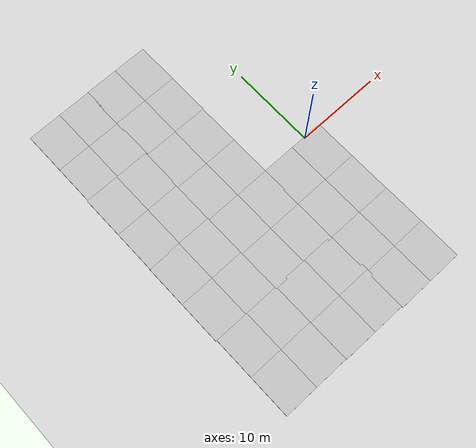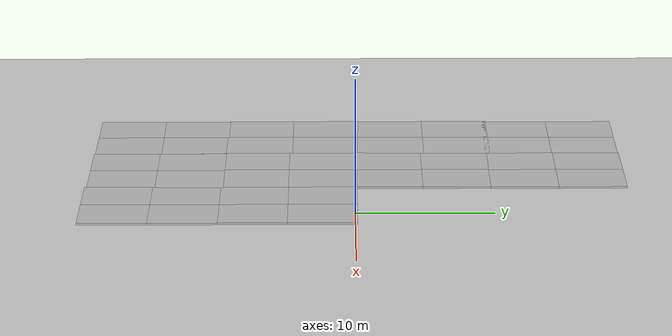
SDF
<sdf version="1.6">
 <world name="default">
  <model name="ground_plane">
   <static>1</static>
   <link name="link">
    <collision name="collision">
     <geometry><plane><normal>0 0 1</normal><size>100 100</size></plane></geometry>
     <surface><friction><ode><mu>100</mu><mu2>50</mu2></ode></friction></surface>
    </collision>
    <visual name="visual">
     <cast_shadows>0</cast_shadows>
     <geometry><plane><normal>0 0 1</normal><size>100 100</size></plane></geometry>
     <material>
      <script><uri>file://media/materials/scripts/gazebo.material</uri><name>Gazebo/Grey</name></script>
     </material>
    </visual>
   </link>
  </model>
  <model name="mud_box_5">
   <static>1</static>
   <link name="link">
    <collision name="collision"><geometry><box><size>8 10 0.2</size></box></geometry></collision>
    <visual name="visual_1">
     <pose>-2 2.5 0 0 -0 0</pose>
     <cast_shadows>0</cast_shadows>
     <geometry><box><size>4 5 0.2</size></box></geometry>
     <material>
      <script>
       <uri>model://mud_box/materials/scripts</uri>
       <uri>model://mud_box/materials/textures</uri>
       <name>vrc/mud</name>
      </script>
     </material>
    </visual>
    <visual name="visual_2">
     <pose>2 2.5 0 0 -0 0</pose>
     <cast_shadows>0</cast_shadows>
     <geometry><box><size>4 5 0.2</size></box></geometry>
     <material>
      <script>
       <uri>model://mud_box/materials/scripts</uri>
       <uri>model://mud_box/materials/textures</uri>
       <name>vrc/mud</name>
      </script>
     </material>
    </visual>
    <visual name="visual_3">
     <pose>2 -2.5 0 0 -0 0</pose>
     <cast_shadows>0</cast_shadows>
     <geometry><box><size>4 5 0.2</size></box></geometry>
     <material>
      <script>
       <uri>model://mud_box/materials/scripts</uri>
       <uri>model://mud_box/materials/textures</uri>
       <name>vrc/mud</name>
      </script>
     </material>
    </visual>
    <visual name="visual_4">
     <pose>-2 -2.5 0 0 -0 0</pose>
     <cast_shadows>0</cast_shadows>
     <geometry><box><size>4 5 0.2</size></box></geometry>
     <material>
      <script>
       <uri>model://mud_box/materials/scripts</uri>
       <uri>model://mud_box/materials/textures</uri>
       <name>vrc/mud</name>
      </script>
     </material>
    </visual>
   </link>
   <pose>-1.79007 -4.85015 0 0 -0 0</pose>
  </model>
  <model name="mud_box_7">
   <static>1</static>
   <link name="link">
    <collision name="collision"><geometry><box><size>8 10 0.2</size></box></geometry></collision>
    <visual name="visual_1">
     <pose>-2 2.5 0 0 -0 0</pose>
     <cast_shadows>0</cast_shadows>
     <geometry><box><size>4 5 0.2</size></box></geometry>
     <material>
      <script>
       <uri>model://mud_box/materials/scripts</uri>
       <uri>model://mud_box/materials/textures</uri>
       <name>vrc/mud</name>
      </script>
     </material>
    </visual>
    <visual name="visual_2">
     <pose>2 2.5 0 0 -0 0</pose>
     <cast_shadows>0</cast_shadows>
     <geometry><box><size>4 5 0.2</size></box></geometry>
     <material>
      <script>
       <uri>model://mud_box/materials/scripts</uri>
       <uri>model://mud_box/materials/textures</uri>
       <name>vrc/mud</name>
      </script>
     </material>
    </visual>
    <visual name="visual_3">
     <pose>2 -2.5 0 0 -0 0</pose>
     <cast_shadows>0</cast_shadows>
     <geometry><box><size>4 5 0.2</size></box></geometry>
     <material>
      <script>
       <uri>model://mud_box/materials/scripts</uri>
       <uri>model://mud_box/materials/textures</uri>
       <name>vrc/mud</name>
      </script>
     </material>
    </visual>
    <visual name="visual_4">
     <pose>-2 -2.5 0 0 -0 0</pose>
     <cast_shadows>0</cast_shadows>
     <geometry><box><size>4 5 0.2</size></box></geometry>
     <material>
      <script>
       <uri>model://mud_box/materials/scripts</uri>
       <uri>model://mud_box/materials/textures</uri>
       <name>vrc/mud</name>
      </script>
     </material>
    </visual>
   </link>
   <pose>-9.71456 4.97281 0 0 -0 0</pose>
  </model>
  <model name="mud_box_8">
   <static>1</static>
   <link name="link">
    <collision name="collision"><geometry><box><size>8 10 0.2</size></box></geometry></collision>
    <visual name="visual_1">
     <pose>-2 2.5 0 0 -0 0</pose>
     <cast_shadows>0</cast_shadows>
     <geometry><box><size>4 5 0.2</size></box></geometry>
     <material>
      <script>
       <uri>model://mud_box/materials/scripts</uri>
       <uri>model://mud_box/materials/textures</uri>
       <name>vrc/mud</name>
      </script>
     </material>
    </visual>
    <visual name="visual_2">
     <pose>2 2.5 0 0 -0 0</pose>
     <cast_shadows>0</cast_shadows>
     <geometry><box><size>4 5 0.2</size></box></geometry>
     <material>
      <script>
       <uri>model://mud_box/materials/scripts</uri>
       <uri>model://mud_box/materials/textures</uri>
       <name>vrc/mud</name>
      </script>
     </material>
    </visual>
    <visual name="visual_3">
     <pose>2 -2.5 0 0 -0 0</pose>
     <cast_shadows>0</cast_shadows>
     <geometry><box><size>4 5 0.2</size></box></geometry>
     <material>
      <script>
       <uri>model://mud_box/materials/scripts</uri>
       <uri>model://mud_box/materials/textures</uri>
       <name>vrc/mud</name>
      </script>
     </material>
    </visual>
    <visual name="visual_4">
     <pose>-2 -2.5 0 0 -0 0</pose>
     <cast_shadows>0</cast_shadows>
     <geometry><box><size>4 5 0.2</size></box></geometry>
     <material>
      <script>
       <uri>model://mud_box/materials/scripts</uri>
       <uri>model://mud_box/materials/textures</uri>
       <name>vrc/mud</name>
      </script>
     </material>
    </visual>
   </link>
   <pose>-9.69383 -4.87197 0 0 -0 0</pose>
  </model>
  <model name="mud_box_9">
   <static>1</static>
   <link name="link">
    <collision name="collision"><geometry><box><size>8 10 0.2</size></box></geometry></collision>
    <visual name="visual_1">
     <pose>-2 2.5 0 0 -0 0</pose>
     <cast_shadows>0</cast_shadows>
     <geometry><box><size>4 5 0.2</size></box></geometry>
     <material>
      <script>
       <uri>model://mud_box/materials/scripts</uri>
       <uri>model://mud_box/materials/textures</uri>
       <name>vrc/mud</name>
      </script>
     </material>
    </visual>
    <visual name="visual_2">
     <pose>2 2.5 0 0 -0 0</pose>
     <cast_shadows>0</cast_shadows>
     <geometry><box><size>4 5 0.2</size></box></geometry>
     <material>
      <script>
       <uri>model://mud_box/materials/scripts</uri>
       <uri>model://mud_box/materials/textures</uri>
       <name>vrc/mud</name>
      </script>
     </material>
    </visual>
    <visual name="visual_3">
     <pose>2 -2.5 0 0 -0 0</pose>
     <cast_shadows>0</cast_shadows>
     <geometry><box><size>4 5 0.2</size></box></geometry>
     <material>
      <script>
       <uri>model://mud_box/materials/scripts</uri>
       <uri>model://mud_box/materials/textures</uri>
       <name>vrc/mud</name>
      </script>
     </material>
    </visual>
    <visual name="visual_4">
     <pose>-2 -2.5 0 0 -0 0</pose>
     <cast_shadows>0</cast_shadows>
     <geometry><box><size>4 5 0.2</size></box></geometry>
     <material>
      <script>
       <uri>model://mud_box/materials/scripts</uri>
       <uri>model://mud_box/materials/textures</uri>
       <name>vrc/mud</name>
      </script>
     </material>
    </visual>
   </link>
   <pose>-9.66658 14.9513 0 0 -0 0</pose>
  </model>
  <model name="mud_box_15">
   <static>1</static>
   <link name="link">
    <collision name="collision"><geometry><box><size>8 10 0.2</size></box></geometry></collision>
    <visual name="visual_1">
     <pose>-2 2.5 0 0 -0 0</pose>
     <cast_shadows>0</cast_shadows>
     <geometry><box><size>4 5 0.2</size></box></geometry>
     <material>
      <script>
       <uri>model://mud_box/materials/scripts</uri>
       <uri>model://mud_box/materials/textures</uri>
       <name>vrc/mud</name>
      </script>
     </material>
    </visual>
    <visual name="visual_2">
     <pose>2 2.5 0 0 -0 0</pose>
     <cast_shadows>0</cast_shadows>
     <geometry><box><size>4 5 0.2</size></box></geometry>
     <material>
      <script>
       <uri>model://mud_box/materials/scripts</uri>
       <uri>model://mud_box/materials/textures</uri>
       <name>vrc/mud</name>
      </script>
     </material>
    </visual>
    <visual name="visual_3">
     <pose>2 -2.5 0 0 -0 0</pose>
     <cast_shadows>0</cast_shadows>
     <geometry><box><size>4 5 0.2</size></box></geometry>
     <material>
      <script>
       <uri>model://mud_box/materials/scripts</uri>
       <uri>model://mud_box/materials/textures</uri>
       <name>vrc/mud</name>
      </script>
     </material>
    </visual>
    <visual name="visual_4">
     <pose>-2 -2.5 0 0 -0 0</pose>
     <cast_shadows>0</cast_shadows>
     <geometry><box><size>4 5 0.2</size></box></geometry>
     <material>
      <script>
       <uri>model://mud_box/materials/scripts</uri>
       <uri>model://mud_box/materials/textures</uri>
       <name>vrc/mud</name>
      </script>
     </material>
    </visual>
   </link>
   <pose>-1.76277 -14.8017 0 0 -0 0</pose>
  </model>
  <model name="mud_box_16">
   <static>1</static>
   <link name="link">
    <collision name="collision"><geometry><box><size>8 10 0.2</size></box></geometry></collision>
    <visual name="visual_1">
     <pose>-2 2.5 0 0 -0 0</pose>
     <cast_shadows>0</cast_shadows>
     <geometry><box><size>4 5 0.2</size></box></geometry>
     <material>
      <script>
       <uri>model://mud_box/materials/scripts</uri>
       <uri>model://mud_box/materials/textures</uri>
       <name>vrc/mud</name>
      </script>
     </material>
    </visual>
    <visual name="visual_2">
     <pose>2 2.5 0 0 -0 0</pose>
     <cast_shadows>0</cast_shadows>
     <geometry><box><size>4 5 0.2</size></box></geometry>
     <material>
      <script>
       <uri>model://mud_box/materials/scripts</uri>
       <uri>model://mud_box/materials/textures</uri>
       <name>vrc/mud</name>
      </script>
     </material>
    </visual>
    <visual name="visual_3">
     <pose>2 -2.5 0 0 -0 0</pose>
     <cast_shadows>0</cast_shadows>
     <geometry><box><size>4 5 0.2</size></box></geometry>
     <material>
      <script>
       <uri>model://mud_box/materials/scripts</uri>
       <uri>model://mud_box/materials/textures</uri>
       <name>vrc/mud</name>
      </script>
     </material>
    </visual>
    <visual name="visual_4">
     <pose>-2 -2.5 0 0 -0 0</pose>
     <cast_shadows>0</cast_shadows>
     <geometry><box><size>4 5 0.2</size></box></geometry>
     <material>
      <script>
       <uri>model://mud_box/materials/scripts</uri>
       <uri>model://mud_box/materials/textures</uri>
       <name>vrc/mud</name>
      </script>
     </material>
    </visual>
   </link>
   <pose>-9.54132 -14.6431 0 0 -0 0</pose>
  </model>
  <model name="mud_box_17">
   <static>1</static>
   <link name="link">
    <collision name="collision"><geometry><box><size>8 10 0.2</size></box></geometry></collision>
    <visual name="visual_1">
     <pose>-2 2.5 0 0 -0 0</pose>
     <cast_shadows>0</cast_shadows>
     <geometry><box><size>4 5 0.2</size></box></geometry>
     <material>
      <script>
       <uri>model://mud_box/materials/scripts</uri>
       <uri>model://mud_box/materials/textures</uri>
       <name>vrc/mud</name>
      </script>
     </material>
    </visual>
    <visual name="visual_2">
     <pose>2 2.5 0 0 -0 0</pose>
     <cast_shadows>0</cast_shadows>
     <geometry><box><size>4 5 0.2</size></box></geometry>
     <material>
      <script>
       <uri>model://mud_box/materials/scripts</uri>
       <uri>model://mud_box/materials/textures</uri>
       <name>vrc/mud</name>
      </script>
     </material>
    </visual>
    <visual name="visual_3">
     <pose>2 -2.5 0 0 -0 0</pose>
     <cast_shadows>0</cast_shadows>
     <geometry><box><size>4 5 0.2</size></box></geometry>
     <material>
      <script>
       <uri>model://mud_box/materials/scripts</uri>
       <uri>model://mud_box/materials/textures</uri>
       <name>vrc/mud</name>
      </script>
     </material>
    </visual>
    <visual name="visual_4">
     <pose>-2 -2.5 0 0 -0 0</pose>
     <cast_shadows>0</cast_shadows>
     <geometry><box><size>4 5 0.2</size></box></geometry>
     <material>
      <script>
       <uri>model://mud_box/materials/scripts</uri>
       <uri>model://mud_box/materials/textures</uri>
       <name>vrc/mud</name>
      </script>
     </material>
    </visual>
   </link>
   <pose>-17.6179 5.23403 0 0 -0 0</pose>
  </model>
  <model name="mud_box_18">
   <static>1</static>
   <link name="link">
    <collision name="collision"><geometry><box><size>8 10 0.2</size></box></geometry></collision>
    <visual name="visual_1">
     <pose>-2 2.5 0 0 -0 0</pose>
     <cast_shadows>0</cast_shadows>
     <geometry><box><size>4 5 0.2</size></box></geometry>
     <material>
      <script>
       <uri>model://mud_box/materials/scripts</uri>
       <uri>model://mud_box/materials/textures</uri>
       <name>vrc/mud</name>
      </script>
     </material>
    </visual>
    <visual name="visual_2">
     <pose>2 2.5 0 0 -0 0</pose>
     <cast_shadows>0</cast_shadows>
     <geometry><box><size>4 5 0.2</size></box></geometry>
     <material>
      <script>
       <uri>model://mud_box/materials/scripts</uri>
       <uri>model://mud_box/materials/textures</uri>
       <name>vrc/mud</name>
      </script>
     </material>
    </visual>
    <visual name="visual_3">
     <pose>2 -2.5 0 0 -0 0</pose>
     <cast_shadows>0</cast_shadows>
     <geometry><box><size>4 5 0.2</size></box></geometry>
     <material>
      <script>
       <uri>model://mud_box/materials/scripts</uri>
       <uri>model://mud_box/materials/textures</uri>
       <name>vrc/mud</name>
      </script>
     </material>
    </visual>
    <visual name="visual_4">
     <pose>-2 -2.5 0 0 -0 0</pose>
     <cast_shadows>0</cast_shadows>
     <geometry><box><size>4 5 0.2</size></box></geometry>
     <material>
      <script>
       <uri>model://mud_box/materials/scripts</uri>
       <uri>model://mud_box/materials/textures</uri>
       <name>vrc/mud</name>
      </script>
     </material>
    </visual>
   </link>
   <pose>-17.6628 -4.6681 0 0 -0 0</pose>
  </model>
  <model name="mud_box_19">
   <static>1</static>
   <link name="link">
    <collision name="collision"><geometry><box><size>8 10 0.2</size></box></geometry></collision>
    <visual name="visual_1">
     <pose>-2 2.5 0 0 -0 0</pose>
     <cast_shadows>0</cast_shadows>
     <geometry><box><size>4 5 0.2</size></box></geometry>
     <material>
      <script>
       <uri>model://mud_box/materials/scripts</uri>
       <uri>model://mud_box/materials/textures</uri>
       <name>vrc/mud</name>
      </script>
     </material>
    </visual>
    <visual name="visual_2">
     <pose>2 2.5 0 0 -0 0</pose>
     <cast_shadows>0</cast_shadows>
     <geometry><box><size>4 5 0.2</size></box></geometry>
     <material>
      <script>
       <uri>model://mud_box/materials/scripts</uri>
       <uri>model://mud_box/materials/textures</uri>
       <name>vrc/mud</name>
      </script>
     </material>
    </visual>
    <visual name="visual_3">
     <pose>2 -2.5 0 0 -0 0</pose>
     <cast_shadows>0</cast_shadows>
     <geometry><box><size>4 5 0.2</size></box></geometry>
     <material>
      <script>
       <uri>model://mud_box/materials/scripts</uri>
       <uri>model://mud_box/materials/textures</uri>
       <name>vrc/mud</name>
      </script>
     </material>
    </visual>
    <visual name="visual_4">
     <pose>-2 -2.5 0 0 -0 0</pose>
     <cast_shadows>0</cast_shadows>
     <geometry><box><size>4 5 0.2</size></box></geometry>
     <material>
      <script>
       <uri>model://mud_box/materials/scripts</uri>
       <uri>model://mud_box/materials/textures</uri>
       <name>vrc/mud</name>
      </script>
     </material>
    </visual>
   </link>
   <pose>-17.5428 -14.5637 0 0 -0 0</pose>
  </model>
  <model name="mud_box">
   <static>1</static>
   <link name="link">
    <collision name="collision"><geometry><box><size>8 10 0.2</size></box></geometry></collision>
    <visual name="visual_1">
     <pose>-2 2.5 0 0 -0 0</pose>
     <cast_shadows>0</cast_shadows>
     <geometry><box><size>4 5 0.2</size></box></geometry>
     <material>
      <script>
       <uri>model://mud_box/materials/scripts</uri>
       <uri>model://mud_box/materials/textures</uri>
       <name>vrc/mud</name>
      </script>
     </material>
    </visual>
    <visual name="visual_2">
     <pose>2 2.5 0 0 -0 0</pose>
     <cast_shadows>0</cast_shadows>
     <geometry><box><size>4 5 0.2</size></box></geometry>
     <material>
      <script>
       <uri>model://mud_box/materials/scripts</uri>
       <uri>model://mud_box/materials/textures</uri>
       <name>vrc/mud</name>
      </script>
     </material>
    </visual>
    <visual name="visual_3">
     <pose>2 -2.5 0 0 -0 0</pose>
     <cast_shadows>0</cast_shadows>
     <geometry><box><size>4 5 0.2</size></box></geometry>
     <material>
      <script>
       <uri>model://mud_box/materials/scripts</uri>
       <uri>model://mud_box/materials/textures</uri>
       <name>vrc/mud</name>
      </script>
     </material>
    </visual>
    <visual name="visual_4">
     <pose>-2 -2.5 0 0 -0 0</pose>
     <cast_shadows>0</cast_shadows>
     <geometry><box><size>4 5 0.2</size></box></geometry>
     <material>
      <script>
       <uri>model://mud_box/materials/scripts</uri>
       <uri>model://mud_box/materials/textures</uri>
       <name>vrc/mud</name>
      </script>
     </material>
    </visual>
   </link>
   <pose>-17.5287 14.9046 0 0 -0 0</pose>
  </model>
 </world>
</sdf>
